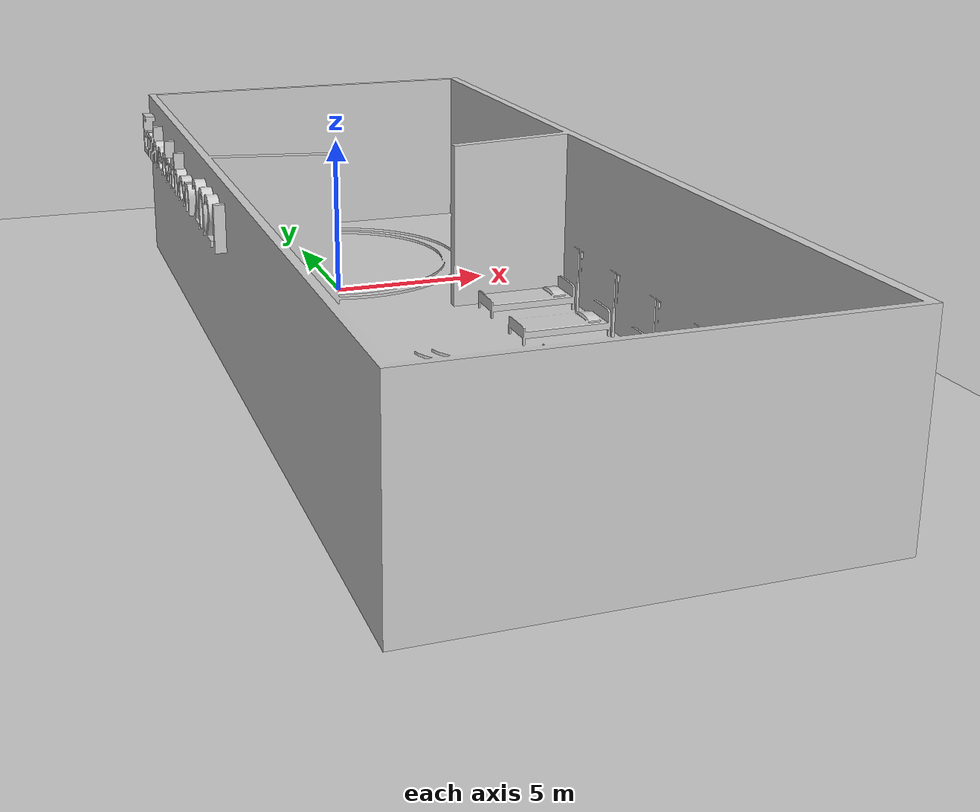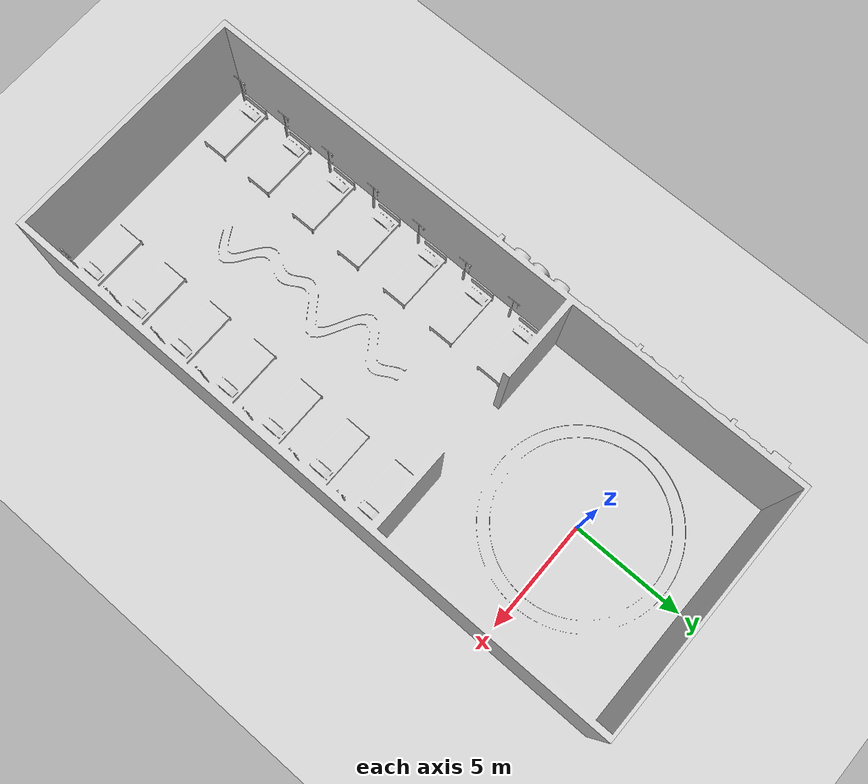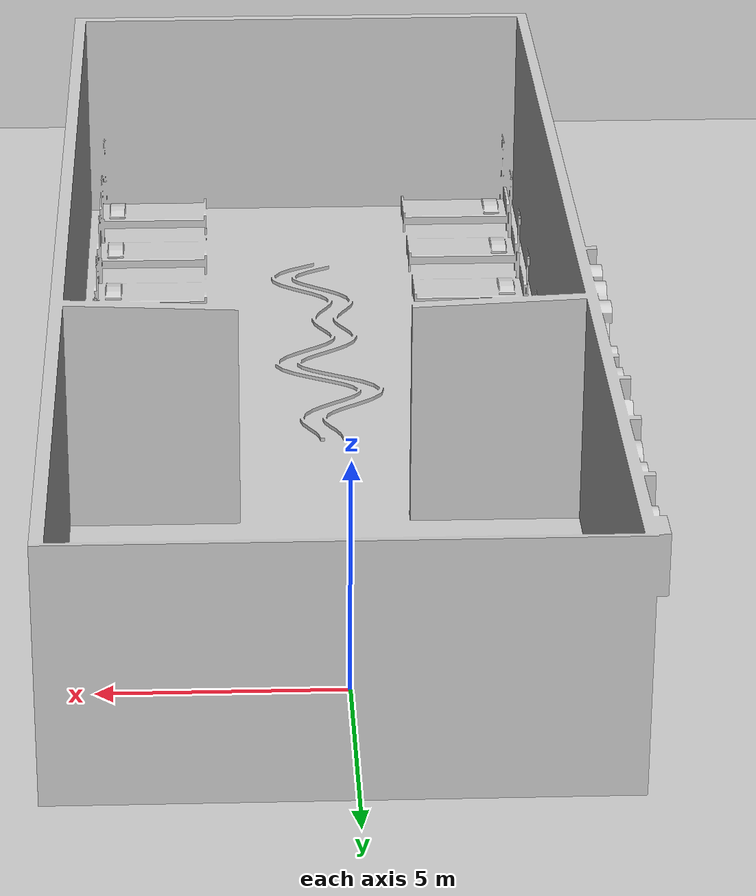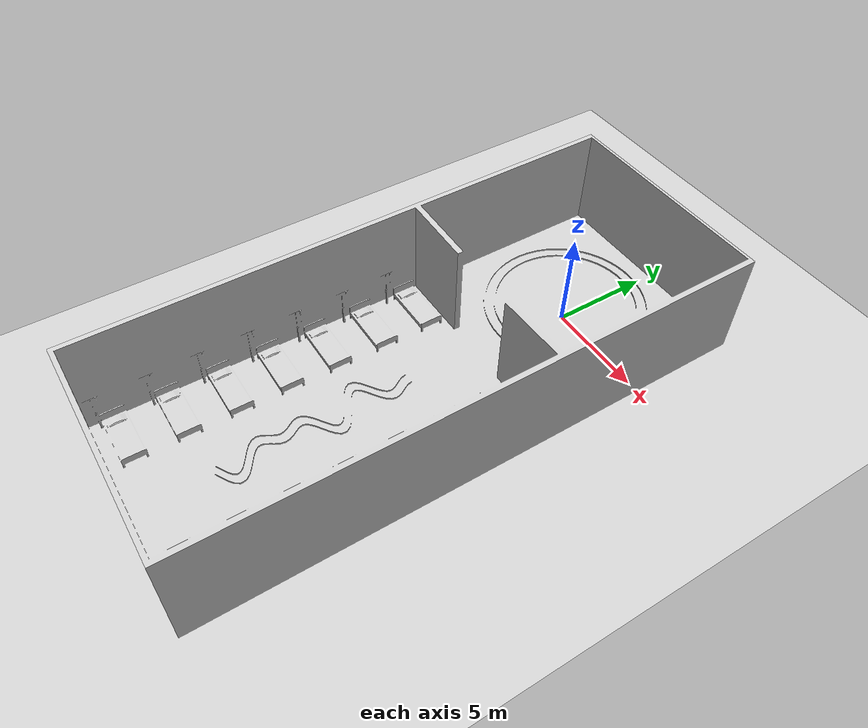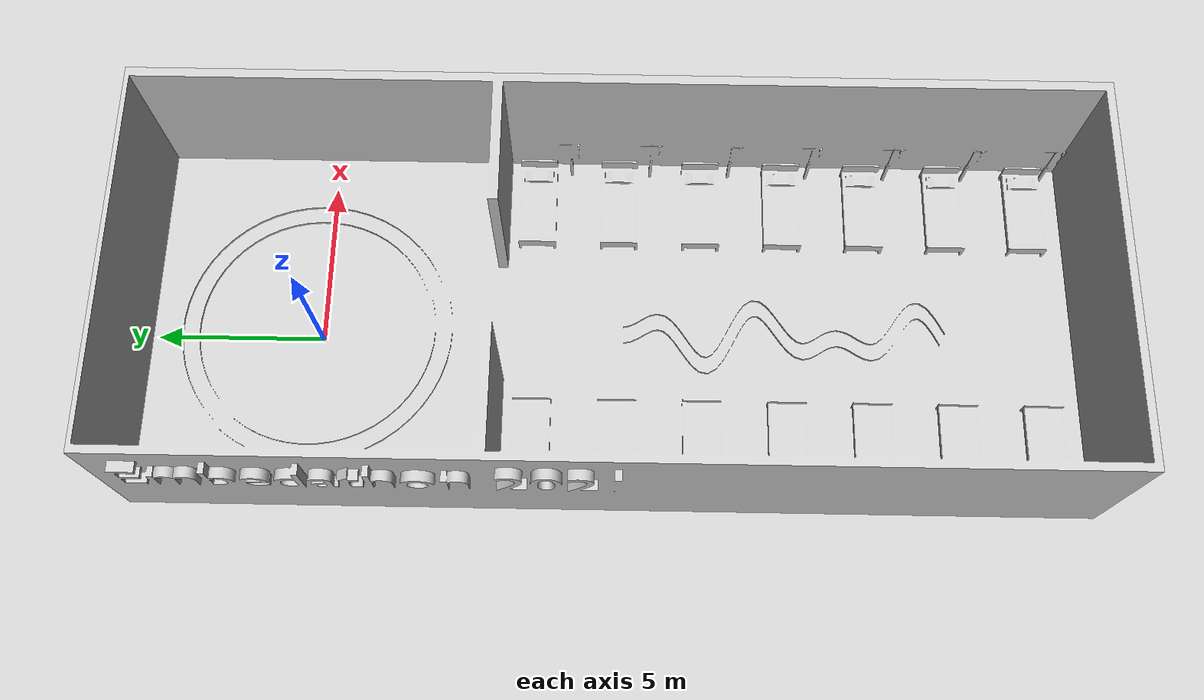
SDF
<?xml version="1.0"?>
<sdf version="1.4">
  <world name="default">
    <include>
      <uri>model://ground_plane</uri>
    </include>
    <include>
      <uri>model://sun</uri>
    </include>
    <model name="areana">
      <pose>0 0 1  0 0 0</pose>
      <static>true</static>
      <link name="body">
        <visual name="visual">
          <geometry>
            <mesh><uri>file://Map1_Edited.dae</uri></mesh>
          </geometry>
        </visual>
      </link>
    </model>
  </world>
</sdf>
